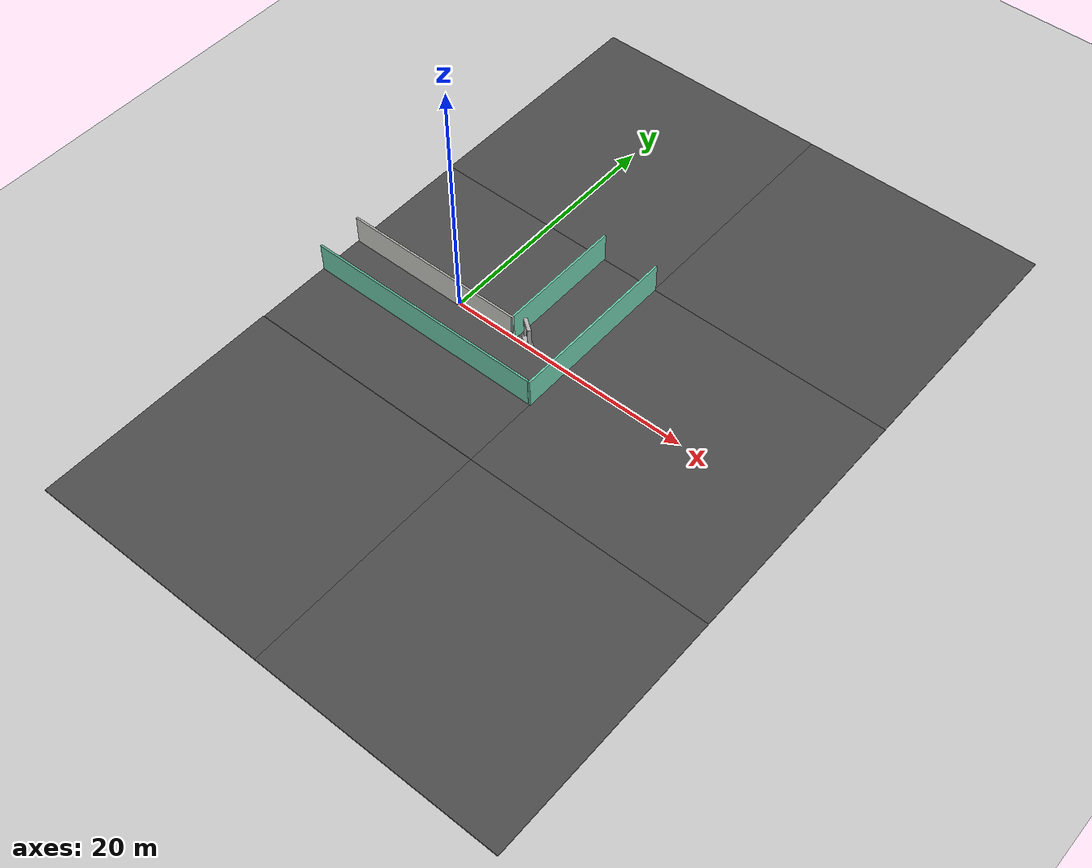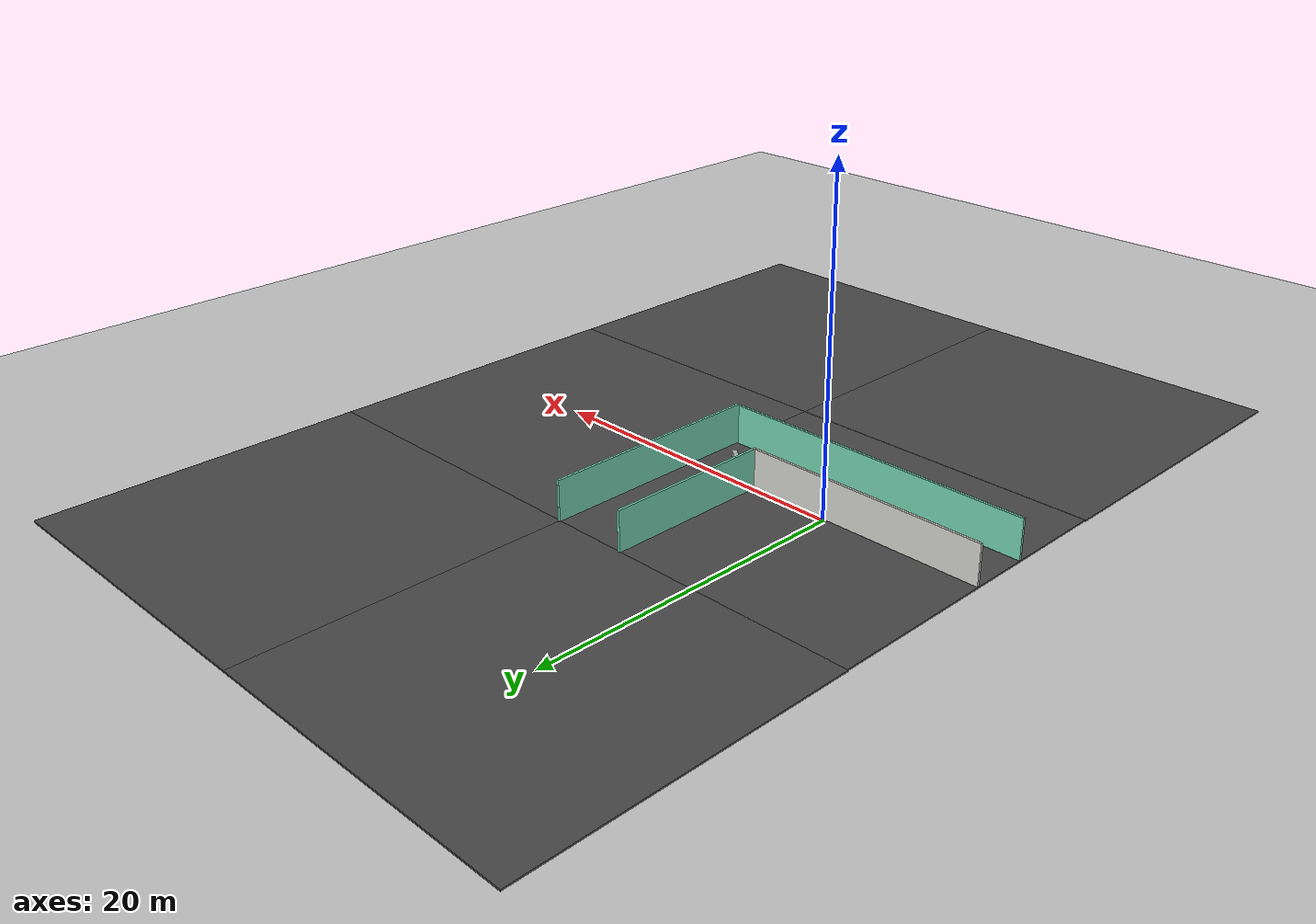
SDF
<sdf version="1.6">
 <world name="default">
  <model name="ground_plane">
   <static>1</static>
   <link name="link">
    <collision name="collision">
     <geometry><plane><normal>0 0 1</normal><size>100 100</size></plane></geometry>
     <surface>
      <contact><collide_bitmask>65535</collide_bitmask></contact>
      <friction><ode><mu>100</mu><mu2>50</mu2></ode></friction>
     </surface>
    </collision>
    <visual name="visual">
     <cast_shadows>0</cast_shadows>
     <geometry><plane><normal>0 0 1</normal><size>100 100</size></plane></geometry>
     <material>
      <script><uri>file://media/materials/scripts/gazebo.material</uri><name>Gazebo/Grey</name></script>
     </material>
    </visual>
   </link>
  </model>
  <model name="asphalt_plane">
   <static>1</static>
   <link name="link">
    <collision name="collision"><geometry><box><size>20 20 0.1</size></box></geometry></collision>
    <visual name="visual">
     <cast_shadows>0</cast_shadows>
     <geometry><box><size>20 20 0.1</size></box></geometry>
     <material>
      <script>
       <uri>model://asphalt_plane/materials/scripts</uri>
       <uri>model://asphalt_plane/materials/textures</uri>
       <name>vrc/asphalt</name>
      </script>
     </material>
    </visual>
   </link>
   <pose>0.045515 0.016583 0 0 -0 0</pose>
  </model>
  <model name="tw_wall">
   <pose>0.063977 3.08659 0 0 -0 0</pose>
   <link name="Wall_1">
    <collision name="Wall_1_Collision">
     <geometry><box><size>19.75 0.15 2.5</size></box></geometry>
     <pose>0 0 1.25 0 -0 0</pose>
    </collision>
    <visual name="Wall_1_Visual">
     <pose>0 0 1.25 0 -0 0</pose>
     <geometry><box><size>19.75 0.15 2.5</size></box></geometry>
     <material>
      <script><uri>file://media/materials/scripts/gazebo.material</uri><name>Gazebo/Grey</name></script>
      <ambient>0.435294 0.796078 0.67451 1</ambient>
     </material>
     <meta><layer>0</layer></meta>
    </visual>
    <pose>-0.117268 -6.93525 0 0 -0 0</pose>
   </link>
   <link name="Wall_5">
    <collision name="Wall_5_Collision">
     <geometry><box><size>14 0.15 2.5</size></box></geometry>
     <pose>0 0 1.25 0 -0 0</pose>
    </collision>
    <visual name="Wall_5_Visual">
     <pose>0 0 1.25 0 -0 0</pose>
     <geometry><box><size>14 0.15 2.5</size></box></geometry>
     <material>
      <script><uri>file://media/materials/scripts/gazebo.material</uri><name>Gazebo/Grey</name></script>
      <ambient>0.435294 0.796078 0.67451 1</ambient>
     </material>
     <meta><layer>0</layer></meta>
    </visual>
    <pose>9.91727 -0.002876 0 0 -0 1.5708</pose>
   </link>
   <link name="Wall_7">
    <collision name="Wall_7_Collision">
     <geometry><box><size>15.25 0.15 2.5</size></box></geometry>
     <pose>0 0 1.25 0 -0 0</pose>
    </collision>
    <visual name="Wall_7_Visual">
     <pose>0 0 1.25 0 -0 0</pose>
     <geometry><box><size>15.25 0.15 2.5</size></box></geometry>
     <material>
      <script><uri>file://media/materials/scripts/gazebo.material</uri><name>Gazebo/CeilingTiled</name></script>
      <ambient>0.435294 0.796078 0.67451 1</ambient>
     </material>
     <meta><layer>0</layer></meta>
    </visual>
    <pose>-2.35526 -3.2631 0 0 -0 0</pose>
   </link>
   <link name="Wall_8">
    <collision name="Wall_8_Collision">
     <geometry><box><size>10.3488 0.15 2.5</size></box></geometry>
     <pose>0 0 1.25 0 -0 0</pose>
    </collision>
    <visual name="Wall_8_Visual">
     <pose>0 0 1.25 0 -0 0</pose>
     <geometry><box><size>10.3488 0.15 2.5</size></box></geometry>
     <material>
      <script><uri>file://media/materials/scripts/gazebo.material</uri><name>Gazebo/Grey</name></script>
      <ambient>0.435294 0.796078 0.67451 1</ambient>
     </material>
     <meta><layer>0</layer></meta>
    </visual>
    <pose>5.16799 1.83585 0 0 -0 1.57083</pose>
   </link>
   <static>1</static>
  </model>
  <model name="frc2016_portcullis">
   <link name="base">
    <inertial>
     <mass>50</mass>
     <pose>0 0 1.02941 0 -0 0</pose>
     <inertia><ixx>3.81711</ixx><ixy>0</ixy><ixz>0</ixz><iyy>4.87698</iyy><iyz>0</iyz><izz>1.6283</izz></inertia>
    </inertial>
    <visual name="platform">
     <pose>0 0 0.07284 0 -0 0</pose>
     <geometry><box><size>1.27 0.5842 0.003175</size></box></geometry>
    </visual>
    <collision name="platform">
     <pose>0 0 0.07284 0 -0 0</pose>
     <geometry><box><size>1.27 0.5842 0.003175</size></box></geometry>
    </collision>
    <visual name="left_column">
     <pose>0.59284 0 0.99042 0 -0 0</pose>
     <geometry><box><size>0.08375 0.28575 1.83198</size></box></geometry>
    </visual>
    <collision name="left_column">
     <pose>0.59284 0 0.99042 0 -0 0</pose>
     <geometry><box><size>0.08375 0.28575 1.83198</size></box></geometry>
    </collision>
    <visual name="right_column">
     <pose>-0.57759 0 0.99042 0 -0 0</pose>
     <geometry><box><size>0.08375 0.28575 1.83198</size></box></geometry>
    </visual>
    <collision name="right_column">
     <pose>-0.57759 0 0.99042 0 -0 0</pose>
     <geometry><box><size>0.08375 0.28575 1.83198</size></box></geometry>
    </collision>
    <visual name="top">
     <pose>-0.00034 0 1.77722 0 -0 0</pose>
     <geometry><box><size>1.22962 0.28575 0.26657</size></box></geometry>
    </visual>
    <collision name="top">
     <pose>-0.00034 0 1.77722 0 -0 0</pose>
     <geometry><box><size>1.22962 0.28575 0.26657</size></box></geometry>
    </collision>
    <visual name="castor1">
     <pose>-0.45651 -0.16234 0.03272 0 -0 0</pose>
     <geometry><sphere><radius>0.03272</radius></sphere></geometry>
    </visual>
    <collision name="castor1">
     <pose>-0.45651 -0.16234 0.03272 0 -0 0</pose>
     <geometry><sphere><radius>0.03272</radius></sphere></geometry>
    </collision>
    <visual name="castor2">
     <pose>-0.27883 0.21836 0.03272 0 -0 0</pose>
     <geometry><sphere><radius>0.03272</radius></sphere></geometry>
    </visual>
    <collision name="castor2">
     <pose>-0.27883 0.21836 0.03272 0 -0 0</pose>
     <geometry><sphere><radius>0.03272</radius></sphere></geometry>
    </collision>
    <visual name="castor3">
     <pose>0.28083 0.21906 0.03272 0 -0 0</pose>
     <geometry><sphere><radius>0.03272</radius></sphere></geometry>
    </visual>
    <collision name="castor3">
     <pose>0.28083 0.21906 0.03272 0 -0 0</pose>
     <geometry><sphere><radius>0.03272</radius></sphere></geometry>
    </collision>
    <visual name="castor4">
     <pose>0.45871 -0.16186 0.03272 0 -0 0</pose>
     <geometry><sphere><radius>0.03272</radius></sphere></geometry>
    </visual>
    <collision name="castor4">
     <pose>0.45871 -0.16186 0.03272 0 -0 0</pose>
     <geometry><sphere><radius>0.03272</radius></sphere></geometry>
    </collision>
   </link>
   <link name="gate">
    <pose>-0.0287 0.02885 0.93327 0 -0 0</pose>
    <inertial>
     <mass>2</mass>
     <inertia><ixx>3.81711</ixx><ixy>0</ixy><ixz>0</ixz><iyy>4.87698</iyy><iyz>0</iyz><izz>1.6283</izz></inertia>
    </inertial>
    <collision name="collision"><geometry><box><size>1.1938 0.02496 1.45732</size></box></geometry></collision>
    <visual name="horz_1">
     <pose>0 0 -0.70326 0 -0 0</pose>
     <geometry><box><size>1.1938 0.02496 0.0508</size></box></geometry>
     <material><ambient>0.4 0.4 0.4 1</ambient><diffuse>0.4 0.4 0.4 1</diffuse></material>
    </visual>
    <visual name="horz_2">
     <pose>0 0 -0.44926 0 -0 0</pose>
     <geometry><box><size>1.1938 0.02496 0.0508</size></box></geometry>
     <material><ambient>0.4 0.4 0.4 1</ambient><diffuse>0.4 0.4 0.4 1</diffuse></material>
    </visual>
    <visual name="horz_3">
     <pose>0 0 -0.14517 0 -0 0</pose>
     <geometry><box><size>1.1938 0.02496 0.0508</size></box></geometry>
     <material><ambient>0.4 0.4 0.4 1</ambient><diffuse>0.4 0.4 0.4 1</diffuse></material>
    </visual>
    <visual name="horz_4">
     <pose>0 0 0.16034 0 -0 0</pose>
     <geometry><box><size>1.1938 0.02496 0.0508</size></box></geometry>
     <material><ambient>0.4 0.4 0.4 1</ambient><diffuse>0.4 0.4 0.4 1</diffuse></material>
    </visual>
    <visual name="horz_5">
     <pose>0 0 0.46514 0 -0 0</pose>
     <geometry><box><size>1.1938 0.02496 0.0508</size></box></geometry>
     <material><ambient>0.4 0.4 0.4 1</ambient><diffuse>0.4 0.4 0.4 1</diffuse></material>
    </visual>
    <visual name="horz_6">
     <pose>0 0 0.72994 0 -0 0</pose>
     <geometry><box><size>1.1938 0.02496 0.0508</size></box></geometry>
     <material><ambient>0.4 0.4 0.4 1</ambient><diffuse>0.4 0.4 0.4 1</diffuse></material>
    </visual>
    <visual name="vert_1">
     <pose>-0.58448 0 0 0 -0 0</pose>
     <geometry><box><size>0.02495 0.02496 1.45732</size></box></geometry>
     <material><ambient>0.4 0.4 0.4 1</ambient><diffuse>0.4 0.4 0.4 1</diffuse></material>
    </visual>
    <visual name="vert_2">
     <pose>-0.38128 0 0 0 -0 0</pose>
     <geometry><box><size>0.0508 0.02496 1.45732</size></box></geometry>
     <material><ambient>0.4 0.4 0.4 1</ambient><diffuse>0.4 0.4 0.4 1</diffuse></material>
    </visual>
    <visual name="vert_3">
     <pose>-0.12728 0 0 0 -0 0</pose>
     <geometry><box><size>0.0508 0.02496 1.45732</size></box></geometry>
     <material><ambient>0.4 0.4 0.4 1</ambient><diffuse>0.4 0.4 0.4 1</diffuse></material>
    </visual>
    <visual name="vert_4">
     <pose>0.12672 0 0 0 -0 0</pose>
     <geometry><box><size>0.0508 0.02496 1.45732</size></box></geometry>
     <material><ambient>0.4 0.4 0.4 1</ambient><diffuse>0.4 0.4 0.4 1</diffuse></material>
    </visual>
    <visual name="vert_5">
     <pose>0.38072 0 0 0 -0 0</pose>
     <geometry><box><size>0.0508 0.02496 1.45732</size></box></geometry>
     <material><ambient>0.4 0.4 0.4 1</ambient><diffuse>0.4 0.4 0.4 1</diffuse></material>
    </visual>
    <visual name="vert_6">
     <pose>0.58392 0 0 0 -0 0</pose>
     <geometry><box><size>0.02495 0.02496 1.45732</size></box></geometry>
     <material><ambient>0.4 0.4 0.4 1</ambient><diffuse>0.4 0.4 0.4 1</diffuse></material>
    </visual>
   </link>
   <joint name="joint" type="prismatic">
    <parent>base</parent>
    <child>gate</child>
    <axis>
     <xyz>0 0 1</xyz>
     <limit><lower>0</lower><upper>1</upper></limit>
     <use_parent_model_frame>0</use_parent_model_frame>
     <dynamics><spring_reference>0</spring_reference><spring_stiffness>0</spring_stiffness></dynamics>
    </axis>
   </joint>
   <pose>6.17586 0.317226 0.049986 3.3e-05 -1.3e-05 -0.633526</pose>
  </model>
  <model name="asphalt_plane_0">
   <static>1</static>
   <link name="link">
    <collision name="collision"><geometry><box><size>20 20 0.1</size></box></geometry></collision>
    <visual name="visual">
     <cast_shadows>0</cast_shadows>
     <geometry><box><size>20 20 0.1</size></box></geometry>
     <material>
      <script>
       <uri>model://asphalt_plane/materials/scripts</uri>
       <uri>model://asphalt_plane/materials/textures</uri>
       <name>vrc/asphalt</name>
      </script>
     </material>
    </visual>
   </link>
   <pose>0 20 0 0 -0 0</pose>
  </model>
  <model name="asphalt_plane_2">
   <static>1</static>
   <link name="link">
    <collision name="collision"><geometry><box><size>20 20 0.1</size></box></geometry></collision>
    <visual name="visual">
     <cast_shadows>0</cast_shadows>
     <geometry><box><size>20 20 0.1</size></box></geometry>
     <material>
      <script>
       <uri>model://asphalt_plane/materials/scripts</uri>
       <uri>model://asphalt_plane/materials/textures</uri>
       <name>vrc/asphalt</name>
      </script>
     </material>
    </visual>
   </link>
   <pose>0 -20 0 0 -0 0</pose>
  </model>
  <model name="asphalt_plane_3">
   <static>1</static>
   <link name="link">
    <collision name="collision"><geometry><box><size>20 20 0.1</size></box></geometry></collision>
    <visual name="visual">
     <cast_shadows>0</cast_shadows>
     <geometry><box><size>20 20 0.1</size></box></geometry>
     <material>
      <script>
       <uri>model://asphalt_plane/materials/scripts</uri>
       <uri>model://asphalt_plane/materials/textures</uri>
       <name>vrc/asphalt</name>
      </script>
     </material>
    </visual>
   </link>
   <pose>20 0 0 0 -0 0</pose>
  </model>
  <model name="asphalt_plane_4">
   <static>1</static>
   <link name="link">
    <collision name="collision"><geometry><box><size>20 20 0.1</size></box></geometry></collision>
    <visual name="visual">
     <cast_shadows>0</cast_shadows>
     <geometry><box><size>20 20 0.1</size></box></geometry>
     <material>
      <script>
       <uri>model://asphalt_plane/materials/scripts</uri>
       <uri>model://asphalt_plane/materials/textures</uri>
       <name>vrc/asphalt</name>
      </script>
     </material>
    </visual>
   </link>
   <pose>20 20 0 0 -0 0</pose>
  </model>
  <model name="asphalt_plane_7">
   <static>1</static>
   <link name="link">
    <collision name="collision"><geometry><box><size>20 20 0.1</size></box></geometry></collision>
    <visual name="visual">
     <cast_shadows>0</cast_shadows>
     <geometry><box><size>20 20 0.1</size></box></geometry>
     <material>
      <script>
       <uri>model://asphalt_plane/materials/scripts</uri>
       <uri>model://asphalt_plane/materials/textures</uri>
       <name>vrc/asphalt</name>
      </script>
     </material>
    </visual>
   </link>
   <pose>20 -20 0 0 -0 0</pose>
  </model>
 </world>
</sdf>
